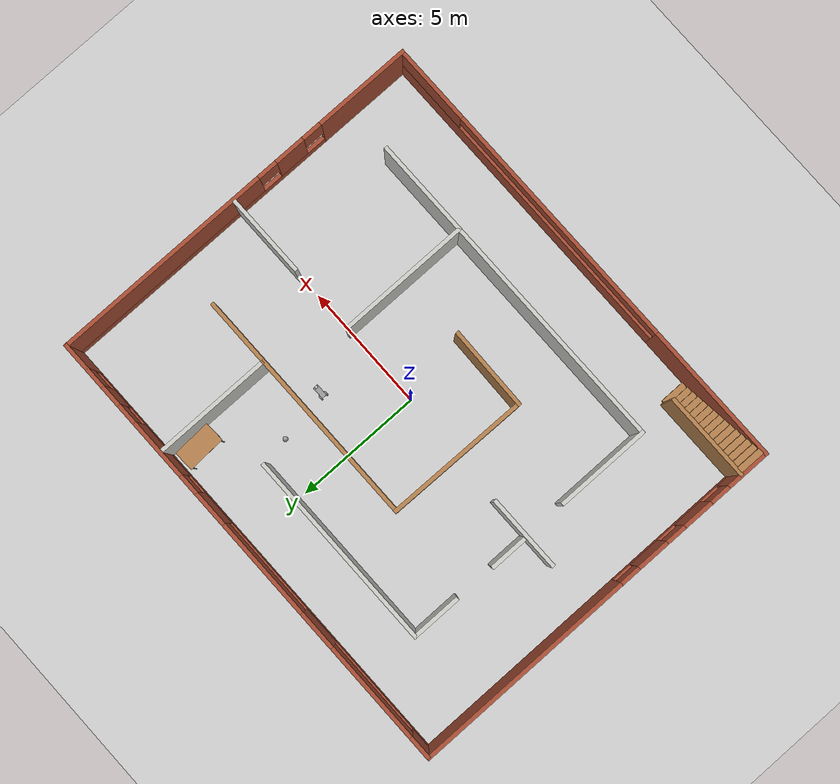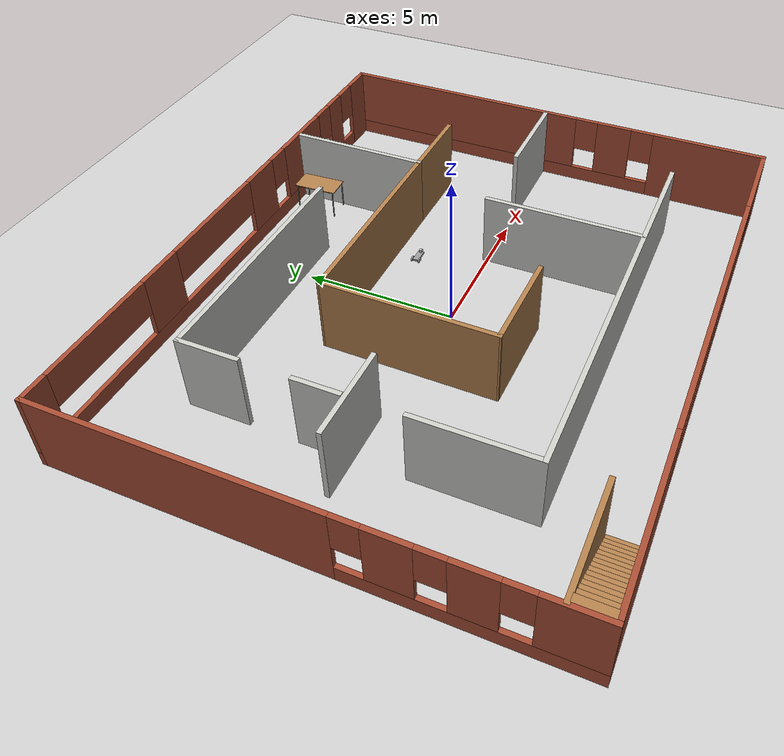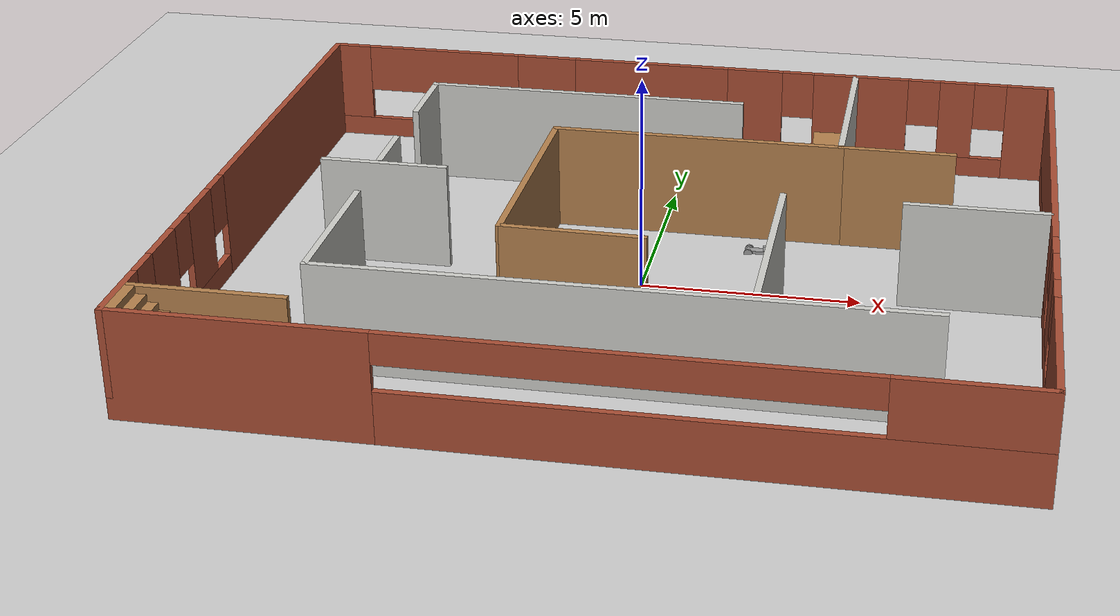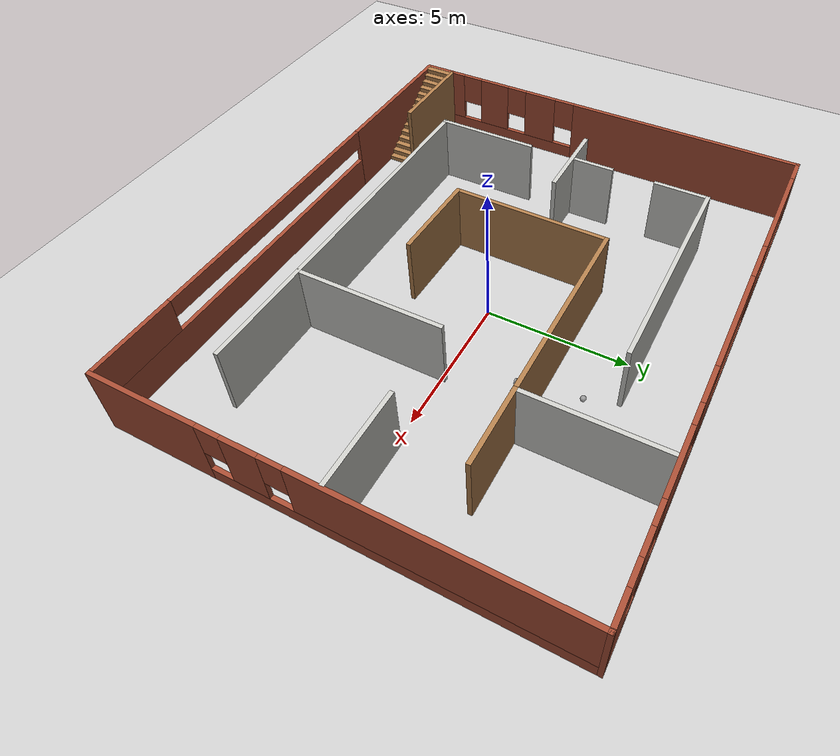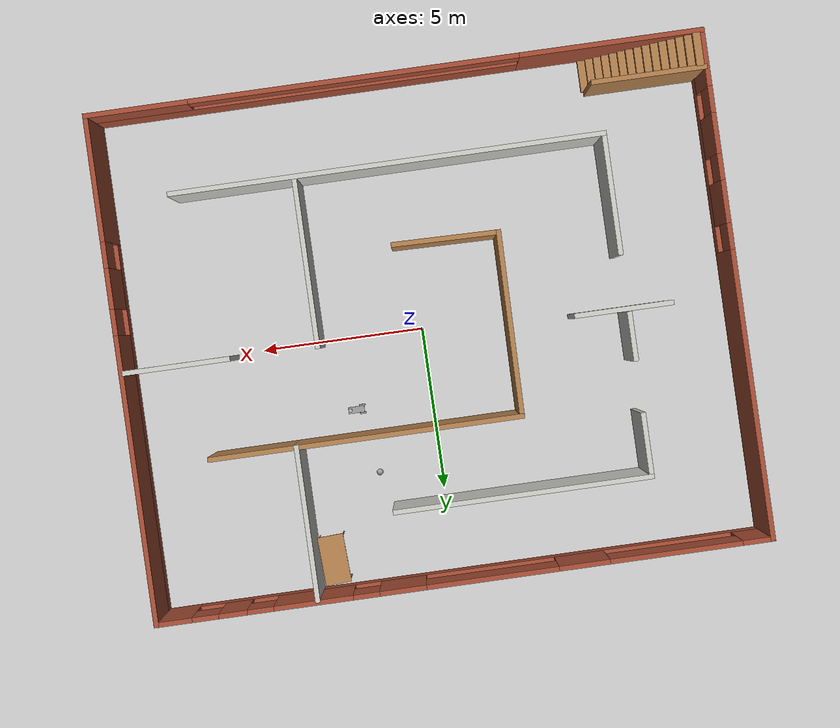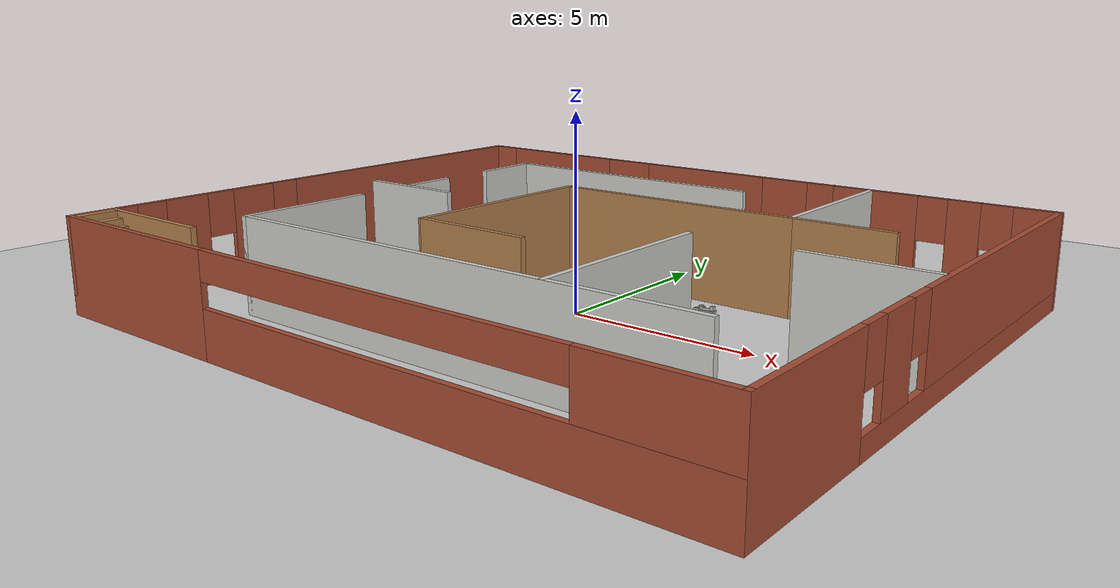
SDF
<sdf version="1.6">
 <world name="default">
  <model name="ground_plane">
   <static>1</static>
   <link name="link">
    <collision name="collision">
     <geometry><plane><normal>0 0 1</normal><size>100 100</size></plane></geometry>
     <surface>
      <contact><collide_bitmask>65535</collide_bitmask></contact>
      <friction><ode><mu>100</mu><mu2>50</mu2></ode></friction>
     </surface>
    </collision>
    <visual name="visual">
     <cast_shadows>0</cast_shadows>
     <geometry><plane><normal>0 0 1</normal><size>100 100</size></plane></geometry>
     <material>
      <script><uri>file://media/materials/scripts/gazebo.material</uri><name>Gazebo/Grey</name></script>
     </material>
    </visual>
   </link>
  </model>
  <model name="building">
   <pose>-0.217086 -0.012012 0 0 -0 0</pose>
   <link name="Stairs_1">
    <visual name="Stairs_1_Visual_0">
     <pose>-5.84753 -7.11897 0.083333 0 -0 -1.5708</pose>
     <geometry><box><size>1 0.233333 0.166667</size></box></geometry>
     <material>
      <script><uri>file://media/materials/scripts/gazebo.material</uri><name>Gazebo/Wood</name></script>
      <ambient>1 1 1 1</ambient>
     </material>
     <meta><layer>0</layer></meta>
    </visual>
    <collision name="Stairs_1_Collision_0">
     <geometry><box><size>1 0.233333 0.166667</size></box></geometry>
     <pose>-5.84753 -7.11897 0.083333 0 -0 -1.5708</pose>
    </collision>
    <visual name="Stairs_1_Visual_1">
     <pose>-6.08086 -7.11897 0.25 0 -0 -1.5708</pose>
     <geometry><box><size>1 0.233333 0.166667</size></box></geometry>
     <material>
      <script><uri>file://media/materials/scripts/gazebo.material</uri><name>Gazebo/Wood</name></script>
      <ambient>1 1 1 1</ambient>
     </material>
     <meta><layer>0</layer></meta>
    </visual>
    <collision name="Stairs_1_Collision_1">
     <geometry><box><size>1 0.233333 0.166667</size></box></geometry>
     <pose>-6.08086 -7.11897 0.25 0 -0 -1.5708</pose>
    </collision>
    <visual name="Stairs_1_Visual_2">
     <pose>-6.3142 -7.11897 0.416667 0 -0 -1.5708</pose>
     <geometry><box><size>1 0.233333 0.166667</size></box></geometry>
     <material>
      <script><uri>file://media/materials/scripts/gazebo.material</uri><name>Gazebo/Wood</name></script>
      <ambient>1 1 1 1</ambient>
     </material>
     <meta><layer>0</layer></meta>
    </visual>
    <collision name="Stairs_1_Collision_2">
     <geometry><box><size>1 0.233333 0.166667</size></box></geometry>
     <pose>-6.3142 -7.11897 0.416667 0 -0 -1.5708</pose>
    </collision>
    <visual name="Stairs_1_Visual_3">
     <pose>-6.54753 -7.11897 0.583333 0 -0 -1.5708</pose>
     <geometry><box><size>1 0.233333 0.166667</size></box></geometry>
     <material>
      <script><uri>file://media/materials/scripts/gazebo.material</uri><name>Gazebo/Wood</name></script>
      <ambient>1 1 1 1</ambient>
     </material>
     <meta><layer>0</layer></meta>
    </visual>
    <collision name="Stairs_1_Collision_3">
     <geometry><box><size>1 0.233333 0.166667</size></box></geometry>
     <pose>-6.54753 -7.11897 0.583333 0 -0 -1.5708</pose>
    </collision>
    <visual name="Stairs_1_Visual_4">
     <pose>-6.78086 -7.11897 0.75 0 -0 -1.5708</pose>
     <geometry><box><size>1 0.233333 0.166667</size></box></geometry>
     <material>
      <script><uri>file://media/materials/scripts/gazebo.material</uri><name>Gazebo/Wood</name></script>
      <ambient>1 1 1 1</ambient>
     </material>
     <meta><layer>0</layer></meta>
    </visual>
    <collision name="Stairs_1_Collision_4">
     <geometry><box><size>1 0.233333 0.166667</size></box></geometry>
     <pose>-6.78086 -7.11897 0.75 0 -0 -1.5708</pose>
    </collision>
    <visual name="Stairs_1_Visual_5">
     <pose>-7.0142 -7.11897 0.916667 0 -0 -1.5708</pose>
     <geometry><box><size>1 0.233333 0.166667</size></box></geometry>
     <material>
      <script><uri>file://media/materials/scripts/gazebo.material</uri><name>Gazebo/Wood</name></script>
      <ambient>1 1 1 1</ambient>
     </material>
     <meta><layer>0</layer></meta>
    </visual>
    <collision name="Stairs_1_Collision_5">
     <geometry><box><size>1 0.233333 0.166667</size></box></geometry>
     <pose>-7.0142 -7.11897 0.916667 0 -0 -1.5708</pose>
    </collision>
    <visual name="Stairs_1_Visual_6">
     <pose>-7.24753 -7.11897 1.08333 0 -0 -1.5708</pose>
     <geometry><box><size>1 0.233333 0.166667</size></box></geometry>
     <material>
      <script><uri>file://media/materials/scripts/gazebo.material</uri><name>Gazebo/Wood</name></script>
      <ambient>1 1 1 1</ambient>
     </material>
     <meta><layer>0</layer></meta>
    </visual>
    <collision name="Stairs_1_Collision_6">
     <geometry><box><size>1 0.233333 0.166667</size></box></geometry>
     <pose>-7.24753 -7.11897 1.08333 0 -0 -1.5708</pose>
    </collision>
    <visual name="Stairs_1_Visual_7">
     <pose>-7.48086 -7.11897 1.25 0 -0 -1.5708</pose>
     <geometry><box><size>1 0.233333 0.166667</size></box></geometry>
     <material>
      <script><uri>file://media/materials/scripts/gazebo.material</uri><name>Gazebo/Wood</name></script>
      <ambient>1 1 1 1</ambient>
     </material>
     <meta><layer>0</layer></meta>
    </visual>
    <collision name="Stairs_1_Collision_7">
     <geometry><box><size>1 0.233333 0.166667</size></box></geometry>
     <pose>-7.48086 -7.11897 1.25 0 -0 -1.5708</pose>
    </collision>
    <visual name="Stairs_1_Visual_8">
     <pose>-7.7142 -7.11897 1.41667 0 -0 -1.5708</pose>
     <geometry><box><size>1 0.233333 0.166667</size></box></geometry>
     <material>
      <script><uri>file://media/materials/scripts/gazebo.material</uri><name>Gazebo/Wood</name></script>
      <ambient>1 1 1 1</ambient>
     </material>
     <meta><layer>0</layer></meta>
    </visual>
    <collision name="Stairs_1_Collision_8">
     <geometry><box><size>1 0.233333 0.166667</size></box></geometry>
     <pose>-7.7142 -7.11897 1.41667 0 -0 -1.5708</pose>
    </collision>
    <visual name="Stairs_1_Visual_9">
     <pose>-7.94753 -7.11897 1.58333 0 -0 -1.5708</pose>
     <geometry><box><size>1 0.233333 0.166667</size></box></geometry>
     <material>
      <script><uri>file://media/materials/scripts/gazebo.material</uri><name>Gazebo/Wood</name></script>
      <ambient>1 1 1 1</ambient>
     </material>
     <meta><layer>0</layer></meta>
    </visual>
    <collision name="Stairs_1_Collision_9">
     <geometry><box><size>1 0.233333 0.166667</size></box></geometry>
     <pose>-7.94753 -7.11897 1.58333 0 -0 -1.5708</pose>
    </collision>
    <visual name="Stairs_1_Visual_10">
     <pose>-8.18086 -7.11897 1.75 0 -0 -1.5708</pose>
     <geometry><box><size>1 0.233333 0.166667</size></box></geometry>
     <material>
      <script><uri>file://media/materials/scripts/gazebo.material</uri><name>Gazebo/Wood</name></script>
      <ambient>1 1 1 1</ambient>
     </material>
     <meta><layer>0</layer></meta>
    </visual>
    <collision name="Stairs_1_Collision_10">
     <geometry><box><size>1 0.233333 0.166667</size></box></geometry>
     <pose>-8.18086 -7.11897 1.75 0 -0 -1.5708</pose>
    </collision>
    <visual name="Stairs_1_Visual_11">
     <pose>-8.4142 -7.11897 1.91667 0 -0 -1.5708</pose>
     <geometry><box><size>1 0.233333 0.166667</size></box></geometry>
     <material>
      <script><uri>file://media/materials/scripts/gazebo.material</uri><name>Gazebo/Wood</name></script>
      <ambient>1 1 1 1</ambient>
     </material>
     <meta><layer>0</layer></meta>
    </visual>
    <collision name="Stairs_1_Collision_11">
     <geometry><box><size>1 0.233333 0.166667</size></box></geometry>
     <pose>-8.4142 -7.11897 1.91667 0 -0 -1.5708</pose>
    </collision>
    <visual name="Stairs_1_Visual_12">
     <pose>-8.64753 -7.11897 2.08333 0 -0 -1.5708</pose>
     <geometry><box><size>1 0.233333 0.166667</size></box></geometry>
     <material>
      <script><uri>file://media/materials/scripts/gazebo.material</uri><name>Gazebo/Wood</name></script>
      <ambient>1 1 1 1</ambient>
     </material>
     <meta><layer>0</layer></meta>
    </visual>
    <collision name="Stairs_1_Collision_12">
     <geometry><box><size>1 0.233333 0.166667</size></box></geometry>
     <pose>-8.64753 -7.11897 2.08333 0 -0 -1.5708</pose>
    </collision>
    <visual name="Stairs_1_Visual_13">
     <pose>-8.88086 -7.11897 2.25 0 -0 -1.5708</pose>
     <geometry><box><size>1 0.233333 0.166667</size></box></geometry>
     <material>
      <script><uri>file://media/materials/scripts/gazebo.material</uri><name>Gazebo/Wood</name></script>
      <ambient>1 1 1 1</ambient>
     </material>
     <meta><layer>0</layer></meta>
    </visual>
    <collision name="Stairs_1_Collision_13">
     <geometry><box><size>1 0.233333 0.166667</size></box></geometry>
     <pose>-8.88086 -7.11897 2.25 0 -0 -1.5708</pose>
    </collision>
    <visual name="Stairs_1_Visual_14">
     <pose>-9.1142 -7.11897 2.41667 0 -0 -1.5708</pose>
     <geometry><box><size>1 0.233333 0.166667</size></box></geometry>
     <material>
      <script><uri>file://media/materials/scripts/gazebo.material</uri><name>Gazebo/Wood</name></script>
      <ambient>1 1 1 1</ambient>
     </material>
     <meta><layer>0</layer></meta>
    </visual>
    <collision name="Stairs_1_Collision_14">
     <geometry><box><size>1 0.233333 0.166667</size></box></geometry>
     <pose>-9.1142 -7.11897 2.41667 0 -0 -1.5708</pose>
    </collision>
   </link>
   <link name="Wall_10">
    <pose>-9.3 0 0 0 0 -1.5708</pose>
    <visual name="Wall_10_Visual_0">
     <pose>-3.347 0 1.25 0 -0 0</pose>
     <geometry><box><size>8.80601 0.15 2.5</size></box></geometry>
     <material>
      <script><uri>file://media/materials/scripts/gazebo.material</uri><name>Gazebo/Bricks</name></script>
      <ambient>0.996078 0.47451 0.0196078 1</ambient>
     </material>
     <meta><layer>0</layer></meta>
    </visual>
    <collision name="Wall_10_Collision_0">
     <geometry><box><size>8.80601 0.15 2.5</size></box></geometry>
     <pose>-3.347 0 1.25 0 -0 0</pose>
    </collision>
    <visual name="Wall_10_Visual_1">
     <pose>4.403 0 0.25 0 -0 0</pose>
     <geometry><box><size>6.69399 0.15 0.5</size></box></geometry>
     <material>
      <script><uri>file://media/materials/scripts/gazebo.material</uri><name>Gazebo/Bricks</name></script>
      <ambient>0.996078 0.47451 0.0196078 1</ambient>
     </material>
     <meta><layer>0</layer></meta>
    </visual>
    <collision name="Wall_10_Collision_1">
     <geometry><box><size>6.69399 0.15 0.5</size></box></geometry>
     <pose>4.403 0 0.25 0 -0 0</pose>
    </collision>
    <visual name="Wall_10_Visual_2">
     <pose>2.5021 0 1.5 0 -0 0</pose>
     <geometry><box><size>1.2922 0.15 2</size></box></geometry>
     <material>
      <script><uri>file://media/materials/scripts/gazebo.material</uri><name>Gazebo/Bricks</name></script>
      <ambient>0.996078 0.47451 0.0196078 1</ambient>
     </material>
     <meta><layer>0</layer></meta>
    </visual>
    <collision name="Wall_10_Collision_2">
     <geometry><box><size>1.2922 0.15 2</size></box></geometry>
     <pose>2.5021 0 1.5 0 -0 0</pose>
    </collision>
    <visual name="Wall_10_Visual_3">
     <pose>4.56329 0 1.5 0 -0 0</pose>
     <geometry><box><size>1.23017 0.15 2</size></box></geometry>
     <material>
      <script><uri>file://media/materials/scripts/gazebo.material</uri><name>Gazebo/Bricks</name></script>
      <ambient>0.996078 0.47451 0.0196078 1</ambient>
     </material>
     <meta><layer>0</layer></meta>
    </visual>
    <collision name="Wall_10_Collision_3">
     <geometry><box><size>1.23017 0.15 2</size></box></geometry>
     <pose>4.56329 0 1.5 0 -0 0</pose>
    </collision>
    <visual name="Wall_10_Visual_4">
     <pose>6.86419 0 1.5 0 -0 0</pose>
     <geometry><box><size>1.77163 0.15 2</size></box></geometry>
     <material>
      <script><uri>file://media/materials/scripts/gazebo.material</uri><name>Gazebo/Bricks</name></script>
      <ambient>0.996078 0.47451 0.0196078 1</ambient>
     </material>
     <meta><layer>0</layer></meta>
    </visual>
    <collision name="Wall_10_Collision_4">
     <geometry><box><size>1.77163 0.15 2</size></box></geometry>
     <pose>6.86419 0 1.5 0 -0 0</pose>
    </collision>
    <visual name="Wall_10_Visual_5">
     <pose>1.45601 0 1.9 0 -0 0</pose>
     <geometry><box><size>0.8 0.15 1.2</size></box></geometry>
     <material>
      <script><uri>file://media/materials/scripts/gazebo.material</uri><name>Gazebo/Bricks</name></script>
      <ambient>0.996078 0.47451 0.0196078 1</ambient>
     </material>
     <meta><layer>0</layer></meta>
    </visual>
    <collision name="Wall_10_Collision_5">
     <geometry><box><size>0.8 0.15 1.2</size></box></geometry>
     <pose>1.45601 0 1.9 0 -0 0</pose>
    </collision>
    <visual name="Wall_10_Visual_6">
     <pose>3.5482 0 1.9 0 -0 0</pose>
     <geometry><box><size>0.8 0.15 1.2</size></box></geometry>
     <material>
      <script><uri>file://media/materials/scripts/gazebo.material</uri><name>Gazebo/Bricks</name></script>
      <ambient>0.996078 0.47451 0.0196078 1</ambient>
     </material>
     <meta><layer>0</layer></meta>
    </visual>
    <collision name="Wall_10_Collision_6">
     <geometry><box><size>0.8 0.15 1.2</size></box></geometry>
     <pose>3.5482 0 1.9 0 -0 0</pose>
    </collision>
    <visual name="Wall_10_Visual_7">
     <pose>5.57837 0 1.9 0 -0 0</pose>
     <geometry><box><size>0.8 0.15 1.2</size></box></geometry>
     <material>
      <script><uri>file://media/materials/scripts/gazebo.material</uri><name>Gazebo/Bricks</name></script>
      <ambient>0.996078 0.47451 0.0196078 1</ambient>
     </material>
     <meta><layer>0</layer></meta>
    </visual>
    <collision name="Wall_10_Collision_7">
     <geometry><box><size>0.8 0.15 1.2</size></box></geometry>
     <pose>5.57837 0 1.9 0 -0 0</pose>
    </collision>
   </link>
   <link name="Wall_16">
    <collision name="Wall_16_Collision">
     <geometry><box><size>13.25 0.15 2.5</size></box></geometry>
     <pose>0 0 1.25 0 -0 0</pose>
    </collision>
    <visual name="Wall_16_Visual">
     <pose>0 0 1.25 0 -0 0</pose>
     <geometry><box><size>13.25 0.15 2.5</size></box></geometry>
     <material>
      <script><uri>file://media/materials/scripts/gazebo.material</uri><name>Gazebo/CeilingTiled</name></script>
      <ambient>0.760784 0.662745 0.627451 1</ambient>
     </material>
     <meta><layer>0</layer></meta>
    </visual>
    <pose>0.575 -5.023 0 0 -0 0</pose>
   </link>
   <link name="Wall_20">
    <collision name="Wall_20_Collision">
     <geometry><box><size>7.88472 0.15 2.5</size></box></geometry>
     <pose>0 0 1.25 0 -0 0</pose>
    </collision>
    <visual name="Wall_20_Visual">
     <pose>0 0 1.25 0 -0 0</pose>
     <geometry><box><size>7.88472 0.15 2.5</size></box></geometry>
     <material>
      <script><uri>file://media/materials/scripts/gazebo.material</uri><name>Gazebo/CeilingTiled</name></script>
      <ambient>0.921569 0.807843 0.615686 1</ambient>
     </material>
     <meta><layer>0</layer></meta>
    </visual>
    <pose>-2.1075 5.327 0 0 -0 0</pose>
   </link>
   <link name="Wall_22">
    <collision name="Wall_22_Collision">
     <geometry><box><size>4.75 0.15 2.5</size></box></geometry>
     <pose>0 0 1.25 0 -0 0</pose>
    </collision>
    <visual name="Wall_22_Visual">
     <pose>0 0 1.25 0 -0 0</pose>
     <geometry><box><size>4.75 0.15 2.5</size></box></geometry>
     <material>
      <script><uri>file://media/materials/scripts/gazebo.material</uri><name>Gazebo/CeilingTiled</name></script>
      <ambient>0.921569 0.807843 0.615686 1</ambient>
     </material>
     <meta><layer>0</layer></meta>
    </visual>
    <pose>4.424 5.304 0 0 0 -1.5708</pose>
   </link>
   <link name="Wall_23">
    <collision name="Wall_23_Collision">
     <geometry><box><size>2.75 0.15 2.5</size></box></geometry>
     <pose>0 0 1.25 0 -0 0</pose>
    </collision>
    <visual name="Wall_23_Visual">
     <pose>0 0 1.25 0 -0 0</pose>
     <geometry><box><size>2.75 0.15 2.5</size></box></geometry>
     <material>
      <script><uri>file://media/materials/scripts/gazebo.material</uri><name>Gazebo/Wood</name></script>
      <ambient>1 1 1 1</ambient>
     </material>
     <meta><layer>0</layer></meta>
    </visual>
    <pose>5.724 3.004 0 0 -0 0</pose>
   </link>
   <link name="Wall_25">
    <collision name="Wall_25_Collision">
     <geometry><box><size>6.9618 0.15 2.5</size></box></geometry>
     <pose>0 0 1.25 0 -0 0</pose>
    </collision>
    <visual name="Wall_25_Visual">
     <pose>0 0 1.25 0 -0 0</pose>
     <geometry><box><size>6.9618 0.15 2.5</size></box></geometry>
     <material>
      <script><uri>file://media/materials/scripts/gazebo.material</uri><name>Gazebo/Wood</name></script>
      <ambient>1 1 1 1</ambient>
     </material>
     <meta><layer>0</layer></meta>
    </visual>
    <pose>1.018 3.004 0 0 -0 3.14159</pose>
   </link>
   <link name="Wall_26">
    <collision name="Wall_26_Collision">
     <geometry><box><size>5.6891 0.15 2.5</size></box></geometry>
     <pose>0 0 1.25 0 -0 0</pose>
    </collision>
    <visual name="Wall_26_Visual">
     <pose>0 0 1.25 0 -0 0</pose>
     <geometry><box><size>5.6891 0.15 2.5</size></box></geometry>
     <material>
      <script><uri>file://media/materials/scripts/gazebo.material</uri><name>Gazebo/Wood</name></script>
      <ambient>1 1 1 1</ambient>
     </material>
     <meta><layer>0</layer></meta>
    </visual>
    <pose>-2.419 0.2345 0 0 0 -1.58199</pose>
   </link>
   <link name="Wall_27">
    <collision name="Wall_27_Collision">
     <geometry><box><size>3.31235 0.15 2.5</size></box></geometry>
     <pose>0 0 1.25 0 -0 0</pose>
    </collision>
    <visual name="Wall_27_Visual">
     <pose>0 0 1.25 0 -0 0</pose>
     <geometry><box><size>3.31235 0.15 2.5</size></box></geometry>
     <material>
      <script><uri>file://media/materials/scripts/gazebo.material</uri><name>Gazebo/Wood</name></script>
      <ambient>1 1 1 1</ambient>
     </material>
     <meta><layer>0</layer></meta>
    </visual>
    <pose>-0.869 -2.5655 0 0 0 -0.019289</pose>
   </link>
   <link name="Wall_29">
    <collision name="Wall_29_Collision">
     <geometry><box><size>5.25 0.15 2.5</size></box></geometry>
     <pose>0 0 1.25 0 -0 0</pose>
    </collision>
    <visual name="Wall_29_Visual">
     <pose>0 0 1.25 0 -0 0</pose>
     <geometry><box><size>5.25 0.15 2.5</size></box></geometry>
     <material>
      <script><uri>file://media/materials/scripts/gazebo.material</uri><name>Gazebo/CeilingTiled</name></script>
      <ambient>0.760784 0.662745 0.627451 1</ambient>
     </material>
     <meta><layer>0</layer></meta>
    </visual>
    <pose>3.378 -2.459 0 0 -0 1.5708</pose>
   </link>
   <link name="Wall_31">
    <collision name="Wall_31_Collision">
     <geometry><box><size>3.25 0.15 2.5</size></box></geometry>
     <pose>0 0 1.25 0 -0 0</pose>
    </collision>
    <visual name="Wall_31_Visual">
     <pose>0 0 1.25 0 -0 0</pose>
     <geometry><box><size>3.25 0.15 2.5</size></box></geometry>
     <material>
      <script><uri>file://media/materials/scripts/gazebo.material</uri><name>Gazebo/CeilingTiled</name></script>
      <ambient>0.921569 0.807843 0.615686 1</ambient>
     </material>
     <meta><layer>0</layer></meta>
    </visual>
    <pose>7.643 0.097 0 0 -0 0</pose>
   </link>
   <link name="Wall_33">
    <collision name="Wall_33_Collision">
     <geometry><box><size>2 0.15 2.5</size></box></geometry>
     <pose>0 0 1.25 0 -0 0</pose>
    </collision>
    <visual name="Wall_33_Visual">
     <pose>0 0 1.25 0 -0 0</pose>
     <geometry><box><size>2 0.15 2.5</size></box></geometry>
     <material>
      <script><uri>file://media/materials/scripts/gazebo.material</uri><name>Gazebo/CeilingTiled</name></script>
      <ambient>0.921569 0.807843 0.615686 1</ambient>
     </material>
     <meta><layer>0</layer></meta>
    </visual>
    <pose>-5.975 4.402 0 0 0 -1.5708</pose>
   </link>
   <link name="Wall_35">
    <collision name="Wall_35_Collision">
     <geometry><box><size>3.75 0.15 2.5</size></box></geometry>
     <pose>0 0 1.25 0 -0 0</pose>
    </collision>
    <visual name="Wall_35_Visual">
     <pose>0 0 1.25 0 -0 0</pose>
     <geometry><box><size>3.75 0.15 2.5</size></box></geometry>
     <material>
      <script><uri>file://media/materials/scripts/gazebo.material</uri><name>Gazebo/CeilingTiled</name></script>
      <ambient>0.760784 0.662745 0.627451 1</ambient>
     </material>
     <meta><layer>0</layer></meta>
    </visual>
    <pose>-5.975 -3.223 0 0 0 -1.5708</pose>
   </link>
   <link name="Wall_37">
    <collision name="Wall_37_Collision">
     <geometry><box><size>3 0.15 2.5</size></box></geometry>
     <pose>0 0 1.25 0 -0 0</pose>
    </collision>
    <visual name="Wall_37_Visual">
     <pose>0 0 1.25 0 -0 0</pose>
     <geometry><box><size>3 0.15 2.5</size></box></geometry>
     <material>
      <script><uri>file://media/materials/scripts/gazebo.material</uri><name>Gazebo/CeilingTiled</name></script>
      <ambient>0.760784 0.662745 0.627451 1</ambient>
     </material>
     <meta><layer>0</layer></meta>
    </visual>
    <pose>-5.847 0.267 0 0 -0 0</pose>
   </link>
   <link name="Wall_44">
    <collision name="Wall_44_Collision">
     <geometry><box><size>3.5 0.15 2.5</size></box></geometry>
     <pose>0 0 1.25 0 -0 0</pose>
    </collision>
    <visual name="Wall_44_Visual">
     <pose>0 0 1.25 0 -0 0</pose>
     <geometry><box><size>3.5 0.15 2.5</size></box></geometry>
     <material>
      <script><uri>file://media/materials/scripts/gazebo.material</uri><name>Gazebo/Wood</name></script>
      <ambient>1 1 1 1</ambient>
     </material>
     <meta><layer>0</layer></meta>
    </visual>
    <pose>-7.557 -6.571 0 0 -0 0</pose>
   </link>
   <link name="Wall_46">
    <collision name="Wall_46_Collision">
     <geometry><box><size>1.5 0.15 2.5</size></box></geometry>
     <pose>0 0 1.25 0 -0 0</pose>
    </collision>
    <visual name="Wall_46_Visual">
     <pose>0 0 1.25 0 -0 0</pose>
     <geometry><box><size>1.5 0.15 2.5</size></box></geometry>
     <material>
      <script><uri>file://media/materials/scripts/gazebo.material</uri><name>Gazebo/CeilingTiled</name></script>
      <ambient>0.760784 0.662745 0.627451 1</ambient>
     </material>
     <meta><layer>0</layer></meta>
    </visual>
    <pose>-5.991 1.106 0 0 -0 1.5708</pose>
   </link>
   <link name="Wall_7">
    <pose>0 -7.675 0 0 -0 0</pose>
    <visual name="Wall_7_Visual_0">
     <pose>-6.584 0 1.25 0 -0 0</pose>
     <geometry><box><size>5.582 0.15 2.5</size></box></geometry>
     <material>
      <script><uri>file://media/materials/scripts/gazebo.material</uri><name>Gazebo/Bricks</name></script>
      <ambient>0.996078 0.47451 0.0196078 1</ambient>
     </material>
     <meta><layer>0</layer></meta>
    </visual>
    <collision name="Wall_7_Collision_0">
     <geometry><box><size>5.582 0.15 2.5</size></box></geometry>
     <pose>-6.584 0 1.25 0 -0 0</pose>
    </collision>
    <visual name="Wall_7_Visual_1">
     <pose>2.791 0 0.6 0 -0 0</pose>
     <geometry><box><size>13.168 0.15 1.2</size></box></geometry>
     <material>
      <script><uri>file://media/materials/scripts/gazebo.material</uri><name>Gazebo/Bricks</name></script>
      <ambient>0.996078 0.47451 0.0196078 1</ambient>
     </material>
     <meta><layer>0</layer></meta>
    </visual>
    <collision name="Wall_7_Collision_1">
     <geometry><box><size>13.168 0.15 1.2</size></box></geometry>
     <pose>2.791 0 0.6 0 -0 0</pose>
    </collision>
    <visual name="Wall_7_Visual_2">
     <pose>7.791 0 1.85 0 -0 0</pose>
     <geometry><box><size>3.168 0.15 1.3</size></box></geometry>
     <material>
      <script><uri>file://media/materials/scripts/gazebo.material</uri><name>Gazebo/Bricks</name></script>
      <ambient>0.996078 0.47451 0.0196078 1</ambient>
     </material>
     <meta><layer>0</layer></meta>
    </visual>
    <collision name="Wall_7_Collision_2">
     <geometry><box><size>3.168 0.15 1.3</size></box></geometry>
     <pose>7.791 0 1.85 0 -0 0</pose>
    </collision>
    <visual name="Wall_7_Visual_3">
     <pose>1.207 0 2.15 0 -0 0</pose>
     <geometry><box><size>10 0.15 0.7</size></box></geometry>
     <material>
      <script><uri>file://media/materials/scripts/gazebo.material</uri><name>Gazebo/Bricks</name></script>
      <ambient>0.996078 0.47451 0.0196078 1</ambient>
     </material>
     <meta><layer>0</layer></meta>
    </visual>
    <collision name="Wall_7_Collision_3">
     <geometry><box><size>10 0.15 0.7</size></box></geometry>
     <pose>1.207 0 2.15 0 -0 0</pose>
    </collision>
   </link>
   <link name="Wall_8">
    <pose>9.3 0 0 0 -0 1.5708</pose>
    <visual name="Wall_8_Visual_0">
     <pose>-5.81821 0 1.25 0 -0 0</pose>
     <geometry><box><size>3.86357 0.15 2.5</size></box></geometry>
     <material>
      <script><uri>file://media/materials/scripts/gazebo.material</uri><name>Gazebo/Bricks</name></script>
      <ambient>0.996078 0.47451 0.0196078 1</ambient>
     </material>
     <meta><layer>0</layer></meta>
    </visual>
    <collision name="Wall_8_Collision_0">
     <geometry><box><size>3.86357 0.15 2.5</size></box></geometry>
     <pose>-5.81821 0 1.25 0 -0 0</pose>
    </collision>
    <visual name="Wall_8_Visual_1">
     <pose>1.93179 0 0.25 0 -0 0</pose>
     <geometry><box><size>11.6364 0.15 0.5</size></box></geometry>
     <material>
      <script><uri>file://media/materials/scripts/gazebo.material</uri><name>Gazebo/Bricks</name></script>
      <ambient>0.996078 0.47451 0.0196078 1</ambient>
     </material>
     <meta><layer>0</layer></meta>
    </visual>
    <collision name="Wall_8_Collision_1">
     <geometry><box><size>11.6364 0.15 0.5</size></box></geometry>
     <pose>1.93179 0 0.25 0 -0 0</pose>
    </collision>
    <visual name="Wall_8_Visual_2">
     <pose>-2.47122 0 1.5 0 -0 0</pose>
     <geometry><box><size>1.23042 0.15 2</size></box></geometry>
     <material>
      <script><uri>file://media/materials/scripts/gazebo.material</uri><name>Gazebo/Bricks</name></script>
      <ambient>0.996078 0.47451 0.0196078 1</ambient>
     </material>
     <meta><layer>0</layer></meta>
    </visual>
    <collision name="Wall_8_Collision_2">
     <geometry><box><size>1.23042 0.15 2</size></box></geometry>
     <pose>-2.47122 0 1.5 0 -0 0</pose>
    </collision>
    <visual name="Wall_8_Visual_3">
     <pose>3.347 0 1.5 0 -0 0</pose>
     <geometry><box><size>8.80601 0.15 2</size></box></geometry>
     <material>
      <script><uri>file://media/materials/scripts/gazebo.material</uri><name>Gazebo/Bricks</name></script>
      <ambient>0.996078 0.47451 0.0196078 1</ambient>
     </material>
     <meta><layer>0</layer></meta>
    </visual>
    <collision name="Wall_8_Collision_3">
     <geometry><box><size>8.80601 0.15 2</size></box></geometry>
     <pose>3.347 0 1.5 0 -0 0</pose>
    </collision>
    <visual name="Wall_8_Visual_4">
     <pose>-3.48643 0 1.9 0 -0 0</pose>
     <geometry><box><size>0.8 0.15 1.2</size></box></geometry>
     <material>
      <script><uri>file://media/materials/scripts/gazebo.material</uri><name>Gazebo/Bricks</name></script>
      <ambient>0.996078 0.47451 0.0196078 1</ambient>
     </material>
     <meta><layer>0</layer></meta>
    </visual>
    <collision name="Wall_8_Collision_4">
     <geometry><box><size>0.8 0.15 1.2</size></box></geometry>
     <pose>-3.48643 0 1.9 0 -0 0</pose>
    </collision>
    <visual name="Wall_8_Visual_5">
     <pose>-1.45601 0 1.9 0 -0 0</pose>
     <geometry><box><size>0.8 0.15 1.2</size></box></geometry>
     <material>
      <script><uri>file://media/materials/scripts/gazebo.material</uri><name>Gazebo/Bricks</name></script>
      <ambient>0.996078 0.47451 0.0196078 1</ambient>
     </material>
     <meta><layer>0</layer></meta>
    </visual>
    <collision name="Wall_8_Collision_5">
     <geometry><box><size>0.8 0.15 1.2</size></box></geometry>
     <pose>-1.45601 0 1.9 0 -0 0</pose>
    </collision>
   </link>
   <link name="Wall_9">
    <pose>0 7.675 0 0 -0 3.14159</pose>
    <visual name="Wall_9_Visual_0">
     <pose>-8.79645 0 1.25 0 -0 0</pose>
     <geometry><box><size>1.15709 0.15 2.5</size></box></geometry>
     <material>
      <script><uri>file://media/materials/scripts/gazebo.material</uri><name>Gazebo/Bricks</name></script>
      <ambient>0.996078 0.47451 0.0196078 1</ambient>
     </material>
     <meta><layer>0</layer></meta>
    </visual>
    <collision name="Wall_9_Collision_0">
     <geometry><box><size>1.15709 0.15 2.5</size></box></geometry>
     <pose>-8.79645 0 1.25 0 -0 0</pose>
    </collision>
    <visual name="Wall_9_Visual_1">
     <pose>0.578547 0 0.25 0 -0 0</pose>
     <geometry><box><size>17.5929 0.15 0.5</size></box></geometry>
     <material>
      <script><uri>file://media/materials/scripts/gazebo.material</uri><name>Gazebo/Bricks</name></script>
      <ambient>0.996078 0.47451 0.0196078 1</ambient>
     </material>
     <meta><layer>0</layer></meta>
    </visual>
    <collision name="Wall_9_Collision_1">
     <geometry><box><size>17.5929 0.15 0.5</size></box></geometry>
     <pose>0.578547 0 0.25 0 -0 0</pose>
    </collision>
    <visual name="Wall_9_Visual_2">
     <pose>-6.98728 0 1.5 0 -0 0</pose>
     <geometry><box><size>0.861253 0.15 2</size></box></geometry>
     <material>
      <script><uri>file://media/materials/scripts/gazebo.material</uri><name>Gazebo/Bricks</name></script>
      <ambient>0.996078 0.47451 0.0196078 1</ambient>
     </material>
     <meta><layer>0</layer></meta>
    </visual>
    <collision name="Wall_9_Collision_2">
     <geometry><box><size>0.861253 0.15 2</size></box></geometry>
     <pose>-6.98728 0 1.5 0 -0 0</pose>
    </collision>
    <visual name="Wall_9_Visual_3">
     <pose>-4.55693 0 1.5 0 -0 0</pose>
     <geometry><box><size>2.39945 0.15 2</size></box></geometry>
     <material>
      <script><uri>file://media/materials/scripts/gazebo.material</uri><name>Gazebo/Bricks</name></script>
      <ambient>0.996078 0.47451 0.0196078 1</ambient>
     </material>
     <meta><layer>0</layer></meta>
    </visual>
    <collision name="Wall_9_Collision_3">
     <geometry><box><size>2.39945 0.15 2</size></box></geometry>
     <pose>-4.55693 0 1.5 0 -0 0</pose>
    </collision>
    <visual name="Wall_9_Visual_4">
     <pose>-1.84984 0 1.5 0 -0 0</pose>
     <geometry><box><size>1.41473 0.15 2</size></box></geometry>
     <material>
      <script><uri>file://media/materials/scripts/gazebo.material</uri><name>Gazebo/Bricks</name></script>
      <ambient>0.996078 0.47451 0.0196078 1</ambient>
     </material>
     <meta><layer>0</layer></meta>
    </visual>
    <collision name="Wall_9_Collision_4">
     <geometry><box><size>1.41473 0.15 2</size></box></geometry>
     <pose>-1.84984 0 1.5 0 -0 0</pose>
    </collision>
    <visual name="Wall_9_Visual_5">
     <pose>3.62628 0 1.5 0 -0 0</pose>
     <geometry><box><size>1.53751 0.15 2</size></box></geometry>
     <material>
      <script><uri>file://media/materials/scripts/gazebo.material</uri><name>Gazebo/Bricks</name></script>
      <ambient>0.996078 0.47451 0.0196078 1</ambient>
     </material>
     <meta><layer>0</layer></meta>
    </visual>
    <collision name="Wall_9_Collision_5">
     <geometry><box><size>1.53751 0.15 2</size></box></geometry>
     <pose>3.62628 0 1.5 0 -0 0</pose>
    </collision>
    <visual name="Wall_9_Visual_6">
     <pose>8.88502 0 1.5 0 -0 0</pose>
     <geometry><box><size>0.979966 0.15 2</size></box></geometry>
     <material>
      <script><uri>file://media/materials/scripts/gazebo.material</uri><name>Gazebo/Bricks</name></script>
      <ambient>0.996078 0.47451 0.0196078 1</ambient>
     </material>
     <meta><layer>0</layer></meta>
    </visual>
    <collision name="Wall_9_Collision_6">
     <geometry><box><size>0.979966 0.15 2</size></box></geometry>
     <pose>8.88502 0 1.5 0 -0 0</pose>
    </collision>
    <visual name="Wall_9_Visual_7">
     <pose>-7.81791 0 1.9 0 -0 0</pose>
     <geometry><box><size>0.8 0.15 1.2</size></box></geometry>
     <material>
      <script><uri>file://media/materials/scripts/gazebo.material</uri><name>Gazebo/Bricks</name></script>
      <ambient>0.996078 0.47451 0.0196078 1</ambient>
     </material>
     <meta><layer>0</layer></meta>
    </visual>
    <collision name="Wall_9_Collision_7">
     <geometry><box><size>0.8 0.15 1.2</size></box></geometry>
     <pose>-7.81791 0 1.9 0 -0 0</pose>
    </collision>
    <visual name="Wall_9_Visual_8">
     <pose>-6.15665 0 1.9 0 -0 0</pose>
     <geometry><box><size>0.8 0.15 1.2</size></box></geometry>
     <material>
      <script><uri>file://media/materials/scripts/gazebo.material</uri><name>Gazebo/Bricks</name></script>
      <ambient>0.996078 0.47451 0.0196078 1</ambient>
     </material>
     <meta><layer>0</layer></meta>
    </visual>
    <collision name="Wall_9_Collision_8">
     <geometry><box><size>0.8 0.15 1.2</size></box></geometry>
     <pose>-6.15665 0 1.9 0 -0 0</pose>
    </collision>
    <visual name="Wall_9_Visual_9">
     <pose>-2.9572 0 1.9 0 -0 0</pose>
     <geometry><box><size>0.8 0.15 1.2</size></box></geometry>
     <material>
      <script><uri>file://media/materials/scripts/gazebo.material</uri><name>Gazebo/Bricks</name></script>
      <ambient>0.996078 0.47451 0.0196078 1</ambient>
     </material>
     <meta><layer>0</layer></meta>
    </visual>
    <collision name="Wall_9_Collision_9">
     <geometry><box><size>0.8 0.15 1.2</size></box></geometry>
     <pose>-2.9572 0 1.9 0 -0 0</pose>
    </collision>
    <visual name="Wall_9_Visual_10">
     <pose>0.857525 0 1.9 0 -0 0</pose>
     <geometry><box><size>4 0.15 1.2</size></box></geometry>
     <material>
      <script><uri>file://media/materials/scripts/gazebo.material</uri><name>Gazebo/Bricks</name></script>
      <ambient>0.996078 0.47451 0.0196078 1</ambient>
     </material>
     <meta><layer>0</layer></meta>
    </visual>
    <collision name="Wall_9_Collision_10">
     <geometry><box><size>4 0.15 1.2</size></box></geometry>
     <pose>0.857525 0 1.9 0 -0 0</pose>
    </collision>
    <visual name="Wall_9_Visual_11">
     <pose>6.39503 0 1.9 0 -0 0</pose>
     <geometry><box><size>4 0.15 1.2</size></box></geometry>
     <material>
      <script><uri>file://media/materials/scripts/gazebo.material</uri><name>Gazebo/Bricks</name></script>
      <ambient>0.996078 0.47451 0.0196078 1</ambient>
     </material>
     <meta><layer>0</layer></meta>
    </visual>
    <collision name="Wall_9_Collision_11">
     <geometry><box><size>4 0.15 1.2</size></box></geometry>
     <pose>6.39503 0 1.9 0 -0 0</pose>
    </collision>
   </link>
   <static>1</static>
  </model>
  <model name="table_clone_4_clone_0">
   <static>1</static>
   <link name="link">
    <collision name="surface">
     <pose>0 0 1 0 -0 0</pose>
     <geometry><box><size>1.5 0.8 0.03</size></box></geometry>
     <surface><friction><ode><mu>0.6</mu><mu2>0.6</mu2></ode></friction></surface>
    </collision>
    <visual name="visual1">
     <pose>0 0 1 0 -0 0</pose>
     <geometry><box><size>1.5 0.8 0.03</size></box></geometry>
     <material>
      <script><uri>file://media/materials/scripts/gazebo.material</uri><name>Gazebo/Wood</name></script>
     </material>
    </visual>
    <collision name="front_left_leg">
     <pose>0.68 0.38 0.5 0 -0 0</pose>
     <geometry><cylinder><radius>0.02</radius><length>1</length></cylinder></geometry>
    </collision>
    <visual name="front_left_leg">
     <pose>0.68 0.38 0.5 0 -0 0</pose>
     <geometry><cylinder><radius>0.02</radius><length>1</length></cylinder></geometry>
     <material>
      <script><uri>file://media/materials/scripts/gazebo.material</uri><name>Gazebo/Grey</name></script>
     </material>
    </visual>
    <collision name="front_right_leg">
     <pose>0.68 -0.38 0.5 0 -0 0</pose>
     <geometry><cylinder><radius>0.02</radius><length>1</length></cylinder></geometry>
    </collision>
    <visual name="front_right_leg">
     <pose>0.68 -0.38 0.5 0 -0 0</pose>
     <geometry><cylinder><radius>0.02</radius><length>1</length></cylinder></geometry>
     <material>
      <script><uri>file://media/materials/scripts/gazebo.material</uri><name>Gazebo/Grey</name></script>
     </material>
    </visual>
    <collision name="back_right_leg">
     <pose>-0.68 -0.38 0.5 0 -0 0</pose>
     <geometry><cylinder><radius>0.02</radius><length>1</length></cylinder></geometry>
    </collision>
    <visual name="back_right_leg">
     <pose>-0.68 -0.38 0.5 0 -0 0</pose>
     <geometry><cylinder><radius>0.02</radius><length>1</length></cylinder></geometry>
     <material>
      <script><uri>file://media/materials/scripts/gazebo.material</uri><name>Gazebo/Grey</name></script>
     </material>
    </visual>
    <collision name="back_left_leg">
     <pose>-0.68 0.38 0.5 0 -0 0</pose>
     <geometry><cylinder><radius>0.02</radius><length>1</length></cylinder></geometry>
    </collision>
    <visual name="back_left_leg">
     <pose>-0.68 0.38 0.5 0 -0 0</pose>
     <geometry><cylinder><radius>0.02</radius><length>1</length></cylinder></geometry>
     <material>
      <script><uri>file://media/materials/scripts/gazebo.material</uri><name>Gazebo/Grey</name></script>
     </material>
    </visual>
   </link>
   <pose>3.65435 6.65379 0 0 -0 1.61882</pose>
  </model>
  <model name="white_ball">
   <link name="link_0">
    <inertial>
     <mass>1</mass>
     <inertia><ixx>0.1</ixx><ixy>0</ixy><ixz>0</ixz><iyy>0.1</iyy><iyz>0</iyz><izz>0.1</izz></inertia>
    </inertial>
    <visual name="visual">
     <geometry><sphere><radius>0.1</radius></sphere></geometry>
     <material>
      <lighting>1</lighting>
      <script><uri>file://media/materials/scripts/gazebo.material</uri><name>Gazebo/Grey</name></script>
      <shader type="pixel"><normal_map>__default__</normal_map></shader>
      <ambient>1 1 1 1</ambient>
      <diffuse>1 1 1 1</diffuse>
      <specular>1 1 1 1</specular>
      <emissive>1 1 1 1</emissive>
     </material>
    </visual>
    <collision name="collision">
     <geometry><sphere><radius>0.1</radius></sphere></geometry>
     <surface>
      <friction>
       <ode><mu>1</mu><mu2>1</mu2><fdir1>0 0 0</fdir1><slip1>0</slip1><slip2>0</slip2></ode>
       <torsional>
        <coefficient>1</coefficient>
        <patch_radius>0</patch_radius>
        <surface_radius>0</surface_radius>
        <use_patch_radius>1</use_patch_radius>
        <ode><slip>0</slip></ode>
       </torsional>
      </friction>
      <bounce><restitution_coefficient>0</restitution_coefficient><threshold>1e+06</threshold></bounce>
      <contact>
       <collide_without_contact>0</collide_without_contact>
       <collide_without_contact_bitmask>1</collide_without_contact_bitmask>
       <collide_bitmask>1</collide_bitmask>
       <ode>
        <soft_cfm>0</soft_cfm>
        <soft_erp>0.2</soft_erp>
        <kp>1e+13</kp>
        <kd>1</kd>
        <max_vel>0.01</max_vel>
        <min_depth>0</min_depth>
       </ode>
       <bullet>
        <split_impulse>1</split_impulse>
        <split_impulse_penetration_threshold>-0.01</split_impulse_penetration_threshold>
        <soft_cfm>0</soft_cfm>
        <soft_erp>0.2</soft_erp>
        <kp>1e+13</kp>
        <kd>1</kd>
       </bullet>
      </contact>
     </surface>
    </collision>
   </link>
   <static>0</static>
   <pose>1.92531 4.25571 0.1 0 -0 0</pose>
  </model>
  <model name="TriRobot">
   <link name="link_2">
    <pose>0.001674 0.000657 -0.001317 0 -0 0</pose>
    <inertial>
     <mass>1</mass>
     <inertia>
      <ixx>0.166667</ixx>
      <ixy>0</ixy>
      <ixz>0</ixz>
      <iyy>0.166667</iyy>
      <iyz>0</iyz>
      <izz>0.166667</izz>
     </inertia>
    </inertial>
    <visual name="visual">
     <geometry><box><size>0.5 0.2 0.1</size></box></geometry>
     <material>
      <lighting>1</lighting>
      <script><uri>file://media/materials/scripts/gazebo.material</uri><name>Gazebo/Grey</name></script>
      <shader type="pixel"><normal_map>__default__</normal_map></shader>
      <ambient>0.3 0.3 0.3 1</ambient>
      <diffuse>0.7 0.7 0.7 1</diffuse>
      <specular>0.01 0.01 0.01 1</specular>
      <emissive>0 0 0 1</emissive>
     </material>
    </visual>
    <collision name="collision">
     <geometry><box><size>0.5 0.2 0.1</size></box></geometry>
     <surface>
      <friction>
       <ode><mu>1</mu><mu2>1</mu2><fdir1>0 0 0</fdir1><slip1>0</slip1><slip2>0</slip2></ode>
       <torsional>
        <coefficient>1</coefficient>
        <patch_radius>0</patch_radius>
        <surface_radius>0</surface_radius>
        <use_patch_radius>1</use_patch_radius>
        <ode><slip>0</slip></ode>
       </torsional>
      </friction>
      <bounce><restitution_coefficient>0</restitution_coefficient><threshold>1e+06</threshold></bounce>
      <contact>
       <collide_without_contact>0</collide_without_contact>
       <collide_without_contact_bitmask>1</collide_without_contact_bitmask>
       <collide_bitmask>1</collide_bitmask>
       <ode>
        <soft_cfm>0</soft_cfm>
        <soft_erp>0.2</soft_erp>
        <kp>1e+13</kp>
        <kd>1</kd>
        <max_vel>0.01</max_vel>
        <min_depth>0</min_depth>
       </ode>
       <bullet>
        <split_impulse>1</split_impulse>
        <split_impulse_penetration_threshold>-0.01</split_impulse_penetration_threshold>
        <soft_cfm>0</soft_cfm>
        <soft_erp>0.2</soft_erp>
        <kp>1e+13</kp>
        <kd>1</kd>
       </bullet>
      </contact>
     </surface>
    </collision>
   </link>
   <link name="link_3">
    <pose>-0.198326 0.125657 -0.001317 1.5707 -0 0</pose>
    <inertial>
     <mass>1</mass>
     <inertia><ixx>0.145833</ixx><ixy>0</ixy><ixz>0</ixz><iyy>0.145833</iyy><iyz>0</iyz><izz>0.125</izz></inertia>
    </inertial>
    <visual name="visual">
     <geometry><cylinder><radius>0.1</radius><length>0.05</length></cylinder></geometry>
     <material>
      <lighting>1</lighting>
      <script><uri>file://media/materials/scripts/gazebo.material</uri><name>Gazebo/Grey</name></script>
      <shader type="pixel"><normal_map>__default__</normal_map></shader>
      <ambient>0.3 0.3 0.3 1</ambient>
      <diffuse>0.7 0.7 0.7 1</diffuse>
      <specular>0.01 0.01 0.01 1</specular>
      <emissive>0 0 0 1</emissive>
     </material>
    </visual>
    <collision name="collision">
     <geometry><cylinder><radius>0.1</radius><length>0.05</length></cylinder></geometry>
     <surface>
      <friction>
       <ode><mu>1</mu><mu2>1</mu2><fdir1>0 0 0</fdir1><slip1>0</slip1><slip2>0</slip2></ode>
       <torsional>
        <coefficient>1</coefficient>
        <patch_radius>0</patch_radius>
        <surface_radius>0</surface_radius>
        <use_patch_radius>1</use_patch_radius>
        <ode><slip>0</slip></ode>
       </torsional>
      </friction>
      <bounce><restitution_coefficient>0</restitution_coefficient><threshold>1e+06</threshold></bounce>
      <contact>
       <collide_without_contact>0</collide_without_contact>
       <collide_without_contact_bitmask>1</collide_without_contact_bitmask>
       <collide_bitmask>1</collide_bitmask>
       <ode>
        <soft_cfm>0</soft_cfm>
        <soft_erp>0.2</soft_erp>
        <kp>1e+13</kp>
        <kd>1</kd>
        <max_vel>0.01</max_vel>
        <min_depth>0</min_depth>
       </ode>
       <bullet>
        <split_impulse>1</split_impulse>
        <split_impulse_penetration_threshold>-0.01</split_impulse_penetration_threshold>
        <soft_cfm>0</soft_cfm>
        <soft_erp>0.2</soft_erp>
        <kp>1e+13</kp>
        <kd>1</kd>
       </bullet>
      </contact>
     </surface>
    </collision>
   </link>
   <link name="link_3_clone">
    <pose>-0.198326 -0.124343 -0.001317 1.5707 -0 0</pose>
    <inertial>
     <mass>1</mass>
     <inertia><ixx>0.145833</ixx><ixy>0</ixy><ixz>0</ixz><iyy>0.145833</iyy><iyz>0</iyz><izz>0.125</izz></inertia>
    </inertial>
    <visual name="visual">
     <geometry><cylinder><radius>0.1</radius><length>0.05</length></cylinder></geometry>
     <material>
      <lighting>1</lighting>
      <script><uri>file://media/materials/scripts/gazebo.material</uri><name>Gazebo/Grey</name></script>
      <shader type="pixel"><normal_map>__default__</normal_map></shader>
      <ambient>0.3 0.3 0.3 1</ambient>
      <diffuse>0.7 0.7 0.7 1</diffuse>
      <specular>0.01 0.01 0.01 1</specular>
      <emissive>0 0 0 1</emissive>
     </material>
    </visual>
    <collision name="collision">
     <geometry><cylinder><radius>0.1</radius><length>0.05</length></cylinder></geometry>
     <surface>
      <friction>
       <ode><mu>1</mu><mu2>1</mu2><fdir1>0 0 0</fdir1><slip1>0</slip1><slip2>0</slip2></ode>
       <torsional>
        <coefficient>1</coefficient>
        <patch_radius>0</patch_radius>
        <surface_radius>0</surface_radius>
        <use_patch_radius>1</use_patch_radius>
        <ode><slip>0</slip></ode>
       </torsional>
      </friction>
      <bounce><restitution_coefficient>0</restitution_coefficient><threshold>1e+06</threshold></bounce>
      <contact>
       <collide_without_contact>0</collide_without_contact>
       <collide_without_contact_bitmask>1</collide_without_contact_bitmask>
       <collide_bitmask>1</collide_bitmask>
       <ode>
        <soft_cfm>0</soft_cfm>
        <soft_erp>0.2</soft_erp>
        <kp>1e+13</kp>
        <kd>1</kd>
        <max_vel>0.01</max_vel>
        <min_depth>0</min_depth>
       </ode>
       <bullet>
        <split_impulse>1</split_impulse>
        <split_impulse_penetration_threshold>-0.01</split_impulse_penetration_threshold>
        <soft_cfm>0</soft_cfm>
        <soft_erp>0.2</soft_erp>
        <kp>1e+13</kp>
        <kd>1</kd>
       </bullet>
      </contact>
     </surface>
    </collision>
   </link>
   <link name="link_5">
    <pose>0.201674 0.000657 -0.051317 0 -0 0</pose>
    <inertial>
     <mass>1</mass>
     <inertia><ixx>0.1</ixx><ixy>0</ixy><ixz>0</ixz><iyy>0.1</iyy><iyz>0</iyz><izz>0.1</izz></inertia>
    </inertial>
    <visual name="visual">
     <geometry><sphere><radius>0.05</radius></sphere></geometry>
     <material>
      <lighting>1</lighting>
      <script><uri>file://media/materials/scripts/gazebo.material</uri><name>Gazebo/Grey</name></script>
      <shader type="pixel"><normal_map>__default__</normal_map></shader>
      <ambient>0.3 0.3 0.3 1</ambient>
      <diffuse>0.7 0.7 0.7 1</diffuse>
      <specular>0.01 0.01 0.01 1</specular>
      <emissive>0 0 0 1</emissive>
     </material>
    </visual>
    <collision name="collision">
     <geometry><sphere><radius>0.05</radius></sphere></geometry>
     <surface>
      <friction>
       <ode><mu>1</mu><mu2>1</mu2><fdir1>0 0 0</fdir1><slip1>0</slip1><slip2>0</slip2></ode>
       <torsional>
        <coefficient>1</coefficient>
        <patch_radius>0</patch_radius>
        <surface_radius>0</surface_radius>
        <use_patch_radius>1</use_patch_radius>
        <ode><slip>0</slip></ode>
       </torsional>
      </friction>
      <bounce><restitution_coefficient>0</restitution_coefficient><threshold>1e+06</threshold></bounce>
      <contact>
       <collide_without_contact>0</collide_without_contact>
       <collide_without_contact_bitmask>1</collide_without_contact_bitmask>
       <collide_bitmask>1</collide_bitmask>
       <ode>
        <soft_cfm>0</soft_cfm>
        <soft_erp>0.2</soft_erp>
        <kp>1e+13</kp>
        <kd>1</kd>
        <max_vel>0.01</max_vel>
        <min_depth>0</min_depth>
       </ode>
       <bullet>
        <split_impulse>1</split_impulse>
        <split_impulse_penetration_threshold>-0.01</split_impulse_penetration_threshold>
        <soft_cfm>0</soft_cfm>
        <soft_erp>0.2</soft_erp>
        <kp>1e+13</kp>
        <kd>1</kd>
       </bullet>
      </contact>
     </surface>
    </collision>
   </link>
   <model name="depth_camera">
    <link name="link">
     <pose>0 0 0.05 0 -0 0</pose>
     <inertial>
      <mass>0.1</mass>
      <inertia>
       <ixx>0.000166667</ixx>
       <iyy>0.000166667</iyy>
       <izz>0.000166667</izz>
       <ixy>0</ixy>
       <ixz>0</ixz>
       <iyz>0</iyz>
      </inertia>
     </inertial>
     <collision name="collision"><geometry><box><size>0.1 0.1 0.1</size></box></geometry></collision>
     <visual name="visual"><geometry><box><size>0.1 0.1 0.1</size></box></geometry></visual>
     <sensor name="camera" type="depth">
      <camera name="__default__">
       <horizontal_fov>1.047</horizontal_fov>
       <image><width>320</width><height>240</height></image>
       <clip><near>0.1</near><far>100</far></clip>
      </camera>
      <always_on>1</always_on>
      <update_rate>30</update_rate>
      <visualize>1</visualize>
     </sensor>
    </link>
    <pose>0.193306 -0.00263 0.055267 0 -0 0</pose>
   </model>
   <joint name="link_2_JOINT_10" type="revolute">
    <parent>link_2</parent>
    <child>link_3</child>
    <axis>
     <xyz>0 0 1</xyz>
     <use_parent_model_frame>0</use_parent_model_frame>
     <limit>
      <lower>-1.79769e+308</lower>
      <upper>1.79769e+308</upper>
      <effort>-1</effort>
      <velocity>-1</velocity>
     </limit>
     <dynamics>
      <spring_reference>0</spring_reference>
      <spring_stiffness>0</spring_stiffness>
      <damping>0</damping>
      <friction>0</friction>
     </dynamics>
    </axis>
    <physics>
     <ode><limit><cfm>0</cfm><erp>0.2</erp></limit><suspension><cfm>0</cfm><erp>0.2</erp></suspension></ode>
    </physics>
   </joint>
   <joint name="link_2_JOINT_11" type="revolute">
    <parent>link_2</parent>
    <child>link_3_clone</child>
    <pose>0 0 0 0 -0.01 0</pose>
    <axis>
     <xyz>0 0 -1</xyz>
     <use_parent_model_frame>0</use_parent_model_frame>
     <limit>
      <lower>-1.79769e+308</lower>
      <upper>1.79769e+308</upper>
      <effort>-1</effort>
      <velocity>-1</velocity>
     </limit>
     <dynamics>
      <spring_reference>0</spring_reference>
      <spring_stiffness>0</spring_stiffness>
      <damping>0</damping>
      <friction>0</friction>
     </dynamics>
    </axis>
    <physics>
     <ode><limit><cfm>0</cfm><erp>0.2</erp></limit><suspension><cfm>0</cfm><erp>0.2</erp></suspension></ode>
    </physics>
   </joint>
   <joint name="link_2_JOINT_12" type="ball">
    <parent>link_2</parent>
    <child>link_5</child>
    <physics>
     <ode><limit><cfm>0</cfm><erp>0.2</erp></limit><suspension><cfm>0</cfm><erp>0.2</erp></suspension></ode>
    </physics>
   </joint>
   <joint name="link_2_JOINT_14" type="fixed">
    <parent>link_2</parent>
    <child>depth_camera::link</child>
    <physics>
     <ode><limit><cfm>0</cfm><erp>0.2</erp></limit><suspension><cfm>0</cfm><erp>0.2</erp></suspension></ode>
    </physics>
   </joint>
   <static>0</static>
   <plugin name="follow_sensor" filename="libFollowerPlugin.so"/>
   <pose>2.38954 2.22221 0 0 -0 0</pose>
  </model>
 </world>
</sdf>
